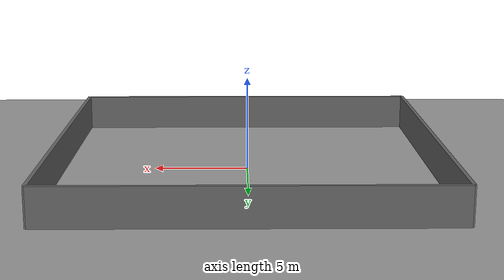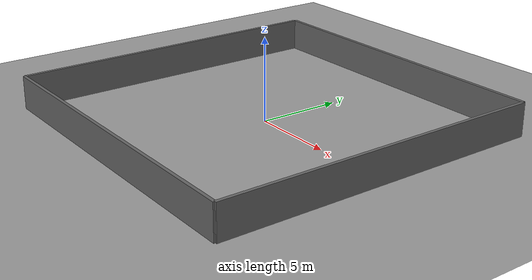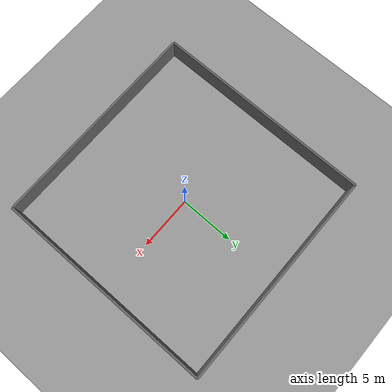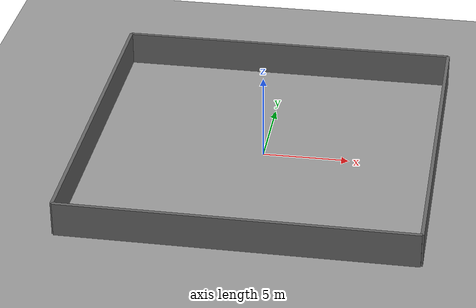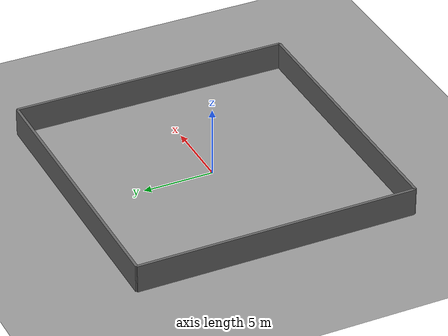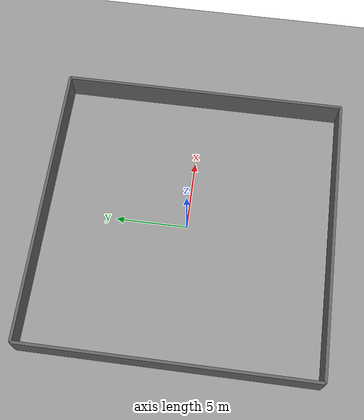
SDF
<sdf version="1.7">
 <world name="world7_crowd_vertical">
  <physics name="10ms" type="ode">
   <max_step_size>0.01</max_step_size>
   <real_time_factor>1.0</real_time_factor>
  </physics>
  <plugin filename="libignition-gazebo-physics-system.so" name="ignition::gazebo::systems::Physics"/>
  <plugin filename="libignition-gazebo-scene-broadcaster-system.so" name="ignition::gazebo::systems::SceneBroadcaster"/>
  <plugin filename="libignition-gazebo-user-commands-system.so" name="ignition::gazebo::systems::UserCommands"/>
  <plugin filename="libignition-gazebo-sensors-system.so" name="ignition::gazebo::systems::Sensors">
   <render_engine>ogre2</render_engine>
  </plugin>
  <light name="sun" type="directional">
   <pose>0 0 20 0 0 0</pose>
   <diffuse>0.9 0.9 0.9 1</diffuse>
   <specular>0.3 0.3 0.3 1</specular>
   <attenuation>
    <range>1000</range>
    <constant>0.9</constant>
    <linear>0.01</linear>
    <quadratic>0.001</quadratic>
   </attenuation>
   <direction>-0.5 0.1 -0.9</direction>
  </light>
  <model name="ground_plane">
   <static>true</static>
   <link name="link">
    <collision name="collision">
     <geometry><plane><normal>0 0 1</normal><size>30 30</size></plane></geometry>
    </collision>
    <visual name="visual">
     <geometry><plane><normal>0 0 1</normal><size>30 30</size></plane></geometry>
     <material>
      <ambient>0.6 0.6 0.6 1</ambient>
      <diffuse>0.6 0.6 0.6 1</diffuse>
      <specular>0.1 0.1 0.1 1</specular>
     </material>
    </visual>
   </link>
  </model>
  <model name="wall_north">
   <static>true</static>
   <pose>0 10 1 0 0 0</pose>
   <link name="link">
    <collision name="col"><geometry><box><size>20 0.2 2</size></box></geometry></collision>
    <visual name="vis">
     <geometry><box><size>20 0.2 2</size></box></geometry>
     <material><ambient>0.4 0.4 0.4 1</ambient><diffuse>0.4 0.4 0.4 1</diffuse></material>
    </visual>
   </link>
  </model>
  <model name="wall_south">
   <static>true</static>
   <pose>0 -10 1 0 0 0</pose>
   <link name="link">
    <collision name="col"><geometry><box><size>20 0.2 2</size></box></geometry></collision>
    <visual name="vis">
     <geometry><box><size>20 0.2 2</size></box></geometry>
     <material><ambient>0.4 0.4 0.4 1</ambient><diffuse>0.4 0.4 0.4 1</diffuse></material>
    </visual>
   </link>
  </model>
  <model name="wall_east">
   <static>true</static>
   <pose>10 0 1 0 0 0</pose>
   <link name="link">
    <collision name="col"><geometry><box><size>0.2 20 2</size></box></geometry></collision>
    <visual name="vis">
     <geometry><box><size>0.2 20 2</size></box></geometry>
     <material><ambient>0.4 0.4 0.4 1</ambient><diffuse>0.4 0.4 0.4 1</diffuse></material>
    </visual>
   </link>
  </model>
  <model name="wall_west">
   <static>true</static>
   <pose>-10 0 1 0 0 0</pose>
   <link name="link">
    <collision name="col"><geometry><box><size>0.2 20 2</size></box></geometry></collision>
    <visual name="vis">
     <geometry><box><size>0.2 20 2</size></box></geometry>
     <material><ambient>0.4 0.4 0.4 1</ambient><diffuse>0.4 0.4 0.4 1</diffuse></material>
    </visual>
   </link>
  </model>
  <model name="human_1">
   <pose>-6.0 -8.0 0 0 0 1.5708</pose>
   <static>true</static>
   <link name="body">
    <collision name="col">
     <pose>0 0 0.85 0 0 0</pose>
     <geometry><cylinder><radius>0.35</radius><length>1.7</length></cylinder></geometry>
     <surface>
      <friction><ode><mu>0.6</mu><mu2>0.6</mu2></ode></friction>
      <contact><ode><kp>1e6</kp><kd>1.0</kd><max_vel>0.5</max_vel></ode></contact>
     </surface>
    </collision>
   </link>
   <plugin filename="__waypoints__" name="waypoints">
    <delay_start>1.0</delay_start>
    <loop>true</loop>
    <waypoint><time>0.0</time><pose>-6.0 -8.0 0 0 0 1.5708</pose></waypoint>
    <waypoint><time>2.0</time><pose>-6.0 -5.6 0 0 0 1.6008</pose></waypoint>
    <waypoint><time>4.0</time><pose>-6.0 -3.2 0 0 0 1.5408</pose></waypoint>
    <waypoint><time>6.0</time><pose>-6.0 -0.8 0 0 0 1.5908</pose></waypoint>
    <waypoint><time>8.0</time><pose>-6.0  1.6 0 0 0 1.5508</pose></waypoint>
    <waypoint><time>10.0</time><pose>-6.0  4.0 0 0 0 1.6008</pose></waypoint>
    <waypoint><time>12.0</time><pose>-6.0  6.4 0 0 0 1.5708</pose></waypoint>
    <waypoint><time>13.3</time><pose>-6.0  8.0 0 0 0 1.5708</pose></waypoint>
    <waypoint><time>14.05</time><pose>-6.0  8.0 0 0 0 3.1416</pose></waypoint>
    <waypoint><time>14.8</time><pose>-6.0  8.0 0 0 0 4.7124</pose></waypoint>
    <waypoint><time>16.8</time><pose>-6.0  5.6 0 0 0 4.6824</pose></waypoint>
    <waypoint><time>18.8</time><pose>-6.0  3.2 0 0 0 4.7424</pose></waypoint>
    <waypoint><time>20.8</time><pose>-6.0  0.8 0 0 0 4.6924</pose></waypoint>
    <waypoint><time>22.8</time><pose>-6.0 -1.6 0 0 0 4.7324</pose></waypoint>
    <waypoint><time>24.8</time><pose>-6.0 -4.0 0 0 0 4.6824</pose></waypoint>
    <waypoint><time>26.8</time><pose>-6.0 -6.4 0 0 0 4.7124</pose></waypoint>
    <waypoint><time>28.1</time><pose>-6.0 -8.0 0 0 0 4.7124</pose></waypoint>
    <waypoint><time>28.85</time><pose>-6.0 -8.0 0 0 0 3.1416</pose></waypoint>
    <waypoint><time>29.6</time><pose>-6.0 -8.0 0 0 0 1.5708</pose></waypoint>
   </plugin>
  </model>
  <model name="human_2">
   <pose>-3.0 -8.0 0 0 0 1.5708</pose>
   <static>true</static>
   <link name="body">
    <collision name="col">
     <pose>0 0 0.85 0 0 0</pose>
     <geometry><cylinder><radius>0.35</radius><length>1.7</length></cylinder></geometry>
     <surface>
      <friction><ode><mu>0.6</mu><mu2>0.6</mu2></ode></friction>
      <contact><ode><kp>1e6</kp><kd>1.0</kd><max_vel>0.5</max_vel></ode></contact>
     </surface>
    </collision>
   </link>
   <plugin filename="__waypoints__" name="waypoints">
    <delay_start>4.0</delay_start>
    <loop>true</loop>
    <waypoint><time>0.0</time><pose>-3.0 -8.0 0 0 0 1.5708</pose></waypoint>
    <waypoint><time>2.0</time><pose>-3.0 -5.6 0 0 0 1.5408</pose></waypoint>
    <waypoint><time>4.0</time><pose>-3.0 -3.2 0 0 0 1.6008</pose></waypoint>
    <waypoint><time>6.0</time><pose>-3.0 -0.8 0 0 0 1.5508</pose></waypoint>
    <waypoint><time>8.0</time><pose>-3.0  1.6 0 0 0 1.6008</pose></waypoint>
    <waypoint><time>10.0</time><pose>-3.0  4.0 0 0 0 1.5408</pose></waypoint>
    <waypoint><time>12.0</time><pose>-3.0  6.4 0 0 0 1.5708</pose></waypoint>
    <waypoint><time>13.3</time><pose>-3.0  8.0 0 0 0 1.5708</pose></waypoint>
    <waypoint><time>14.05</time><pose>-3.0  8.0 0 0 0 3.1416</pose></waypoint>
    <waypoint><time>14.8</time><pose>-3.0  8.0 0 0 0 4.7124</pose></waypoint>
    <waypoint><time>16.8</time><pose>-3.0  5.6 0 0 0 4.7424</pose></waypoint>
    <waypoint><time>18.8</time><pose>-3.0  3.2 0 0 0 4.6824</pose></waypoint>
    <waypoint><time>20.8</time><pose>-3.0  0.8 0 0 0 4.7624</pose></waypoint>
    <waypoint><time>22.8</time><pose>-3.0 -1.6 0 0 0 4.6924</pose></waypoint>
    <waypoint><time>24.8</time><pose>-3.0 -4.0 0 0 0 4.7424</pose></waypoint>
    <waypoint><time>26.8</time><pose>-3.0 -6.4 0 0 0 4.7124</pose></waypoint>
    <waypoint><time>28.1</time><pose>-3.0 -8.0 0 0 0 4.7124</pose></waypoint>
    <waypoint><time>28.85</time><pose>-3.0 -8.0 0 0 0 3.1416</pose></waypoint>
    <waypoint><time>29.6</time><pose>-3.0 -8.0 0 0 0 1.5708</pose></waypoint>
   </plugin>
  </model>
  <model name="human_3">
   <pose>0.0 -8.0 0 0 0 1.5708</pose>
   <static>true</static>
   <link name="body">
    <collision name="col">
     <pose>0 0 0.85 0 0 0</pose>
     <geometry><cylinder><radius>0.35</radius><length>1.7</length></cylinder></geometry>
     <surface>
      <friction><ode><mu>0.6</mu><mu2>0.6</mu2></ode></friction>
      <contact><ode><kp>1e6</kp><kd>1.0</kd><max_vel>0.5</max_vel></ode></contact>
     </surface>
    </collision>
   </link>
   <plugin filename="__waypoints__" name="waypoints">
    <delay_start>7.0</delay_start>
    <loop>true</loop>
    <waypoint><time>0.0</time><pose>0.0 -8.0 0 0 0 1.5708</pose></waypoint>
    <waypoint><time>2.0</time><pose>0.0 -5.6 0 0 0 1.6008</pose></waypoint>
    <waypoint><time>4.0</time><pose>0.0 -3.2 0 0 0 1.5408</pose></waypoint>
    <waypoint><time>6.0</time><pose>0.0 -0.8 0 0 0 1.5908</pose></waypoint>
    <waypoint><time>8.0</time><pose>0.0  1.6 0 0 0 1.5508</pose></waypoint>
    <waypoint><time>10.0</time><pose>0.0  4.0 0 0 0 1.6008</pose></waypoint>
    <waypoint><time>12.0</time><pose>0.0  6.4 0 0 0 1.5708</pose></waypoint>
    <waypoint><time>13.3</time><pose>0.0  8.0 0 0 0 1.5708</pose></waypoint>
    <waypoint><time>14.05</time><pose>0.0  8.0 0 0 0 3.1416</pose></waypoint>
    <waypoint><time>14.8</time><pose>0.0  8.0 0 0 0 4.7124</pose></waypoint>
    <waypoint><time>16.8</time><pose>0.0  5.6 0 0 0 4.6824</pose></waypoint>
    <waypoint><time>18.8</time><pose>0.0  3.2 0 0 0 4.7424</pose></waypoint>
    <waypoint><time>20.8</time><pose>0.0  0.8 0 0 0 4.6924</pose></waypoint>
    <waypoint><time>22.8</time><pose>0.0 -1.6 0 0 0 4.7324</pose></waypoint>
    <waypoint><time>24.8</time><pose>0.0 -4.0 0 0 0 4.6824</pose></waypoint>
    <waypoint><time>26.8</time><pose>0.0 -6.4 0 0 0 4.7124</pose></waypoint>
    <waypoint><time>28.1</time><pose>0.0 -8.0 0 0 0 4.7124</pose></waypoint>
    <waypoint><time>28.85</time><pose>0.0 -8.0 0 0 0 3.1416</pose></waypoint>
    <waypoint><time>29.6</time><pose>0.0 -8.0 0 0 0 1.5708</pose></waypoint>
   </plugin>
  </model>
  <model name="human_4">
   <pose>3.0 -8.0 0 0 0 1.5708</pose>
   <static>true</static>
   <link name="body">
    <collision name="col">
     <pose>0 0 0.85 0 0 0</pose>
     <geometry><cylinder><radius>0.35</radius><length>1.7</length></cylinder></geometry>
     <surface>
      <friction><ode><mu>0.6</mu><mu2>0.6</mu2></ode></friction>
      <contact><ode><kp>1e6</kp><kd>1.0</kd><max_vel>0.5</max_vel></ode></contact>
     </surface>
    </collision>
   </link>
   <plugin filename="__waypoints__" name="waypoints">
    <delay_start>10.0</delay_start>
    <loop>true</loop>
    <waypoint><time>0.0</time><pose>3.0 -8.0 0 0 0 1.5708</pose></waypoint>
    <waypoint><time>2.0</time><pose>3.0 -5.6 0 0 0 1.5408</pose></waypoint>
    <waypoint><time>4.0</time><pose>3.0 -3.2 0 0 0 1.6008</pose></waypoint>
    <waypoint><time>6.0</time><pose>3.0 -0.8 0 0 0 1.5508</pose></waypoint>
    <waypoint><time>8.0</time><pose>3.0  1.6 0 0 0 1.6008</pose></waypoint>
    <waypoint><time>10.0</time><pose>3.0  4.0 0 0 0 1.5408</pose></waypoint>
    <waypoint><time>12.0</time><pose>3.0  6.4 0 0 0 1.5708</pose></waypoint>
    <waypoint><time>13.3</time><pose>3.0  8.0 0 0 0 1.5708</pose></waypoint>
    <waypoint><time>14.05</time><pose>3.0  8.0 0 0 0 3.1416</pose></waypoint>
    <waypoint><time>14.8</time><pose>3.0  8.0 0 0 0 4.7124</pose></waypoint>
    <waypoint><time>16.8</time><pose>3.0  5.6 0 0 0 4.7424</pose></waypoint>
    <waypoint><time>18.8</time><pose>3.0  3.2 0 0 0 4.6824</pose></waypoint>
    <waypoint><time>20.8</time><pose>3.0  0.8 0 0 0 4.7624</pose></waypoint>
    <waypoint><time>22.8</time><pose>3.0 -1.6 0 0 0 4.6924</pose></waypoint>
    <waypoint><time>24.8</time><pose>3.0 -4.0 0 0 0 4.7424</pose></waypoint>
    <waypoint><time>26.8</time><pose>3.0 -6.4 0 0 0 4.7124</pose></waypoint>
    <waypoint><time>28.1</time><pose>3.0 -8.0 0 0 0 4.7124</pose></waypoint>
    <waypoint><time>28.85</time><pose>3.0 -8.0 0 0 0 3.1416</pose></waypoint>
    <waypoint><time>29.6</time><pose>3.0 -8.0 0 0 0 1.5708</pose></waypoint>
   </plugin>
  </model>
  <model name="human_5">
   <pose>6.0 -8.0 0 0 0 1.5708</pose>
   <static>true</static>
   <link name="body">
    <collision name="col">
     <pose>0 0 0.85 0 0 0</pose>
     <geometry><cylinder><radius>0.35</radius><length>1.7</length></cylinder></geometry>
     <surface>
      <friction><ode><mu>0.6</mu><mu2>0.6</mu2></ode></friction>
      <contact><ode><kp>1e6</kp><kd>1.0</kd><max_vel>0.5</max_vel></ode></contact>
     </surface>
    </collision>
   </link>
   <plugin filename="__waypoints__" name="waypoints">
    <delay_start>13.0</delay_start>
    <loop>true</loop>
    <waypoint><time>0.0</time><pose>6.0 -8.0 0 0 0 1.5708</pose></waypoint>
    <waypoint><time>2.0</time><pose>6.0 -5.6 0 0 0 1.6008</pose></waypoint>
    <waypoint><time>4.0</time><pose>6.0 -3.2 0 0 0 1.5408</pose></waypoint>
    <waypoint><time>6.0</time><pose>6.0 -0.8 0 0 0 1.5908</pose></waypoint>
    <waypoint><time>8.0</time><pose>6.0  1.6 0 0 0 1.5508</pose></waypoint>
    <waypoint><time>10.0</time><pose>6.0  4.0 0 0 0 1.6008</pose></waypoint>
    <waypoint><time>12.0</time><pose>6.0  6.4 0 0 0 1.5708</pose></waypoint>
    <waypoint><time>13.3</time><pose>6.0  8.0 0 0 0 1.5708</pose></waypoint>
    <waypoint><time>14.05</time><pose>6.0  8.0 0 0 0 3.1416</pose></waypoint>
    <waypoint><time>14.8</time><pose>6.0  8.0 0 0 0 4.7124</pose></waypoint>
    <waypoint><time>16.8</time><pose>6.0  5.6 0 0 0 4.6824</pose></waypoint>
    <waypoint><time>18.8</time><pose>6.0  3.2 0 0 0 4.7424</pose></waypoint>
    <waypoint><time>20.8</time><pose>6.0  0.8 0 0 0 4.6924</pose></waypoint>
    <waypoint><time>22.8</time><pose>6.0 -1.6 0 0 0 4.7324</pose></waypoint>
    <waypoint><time>24.8</time><pose>6.0 -4.0 0 0 0 4.6824</pose></waypoint>
    <waypoint><time>26.8</time><pose>6.0 -6.4 0 0 0 4.7124</pose></waypoint>
    <waypoint><time>28.1</time><pose>6.0 -8.0 0 0 0 4.7124</pose></waypoint>
    <waypoint><time>28.85</time><pose>6.0 -8.0 0 0 0 3.1416</pose></waypoint>
    <waypoint><time>29.6</time><pose>6.0 -8.0 0 0 0 1.5708</pose></waypoint>
   </plugin>
  </model>
 </world>
</sdf>
